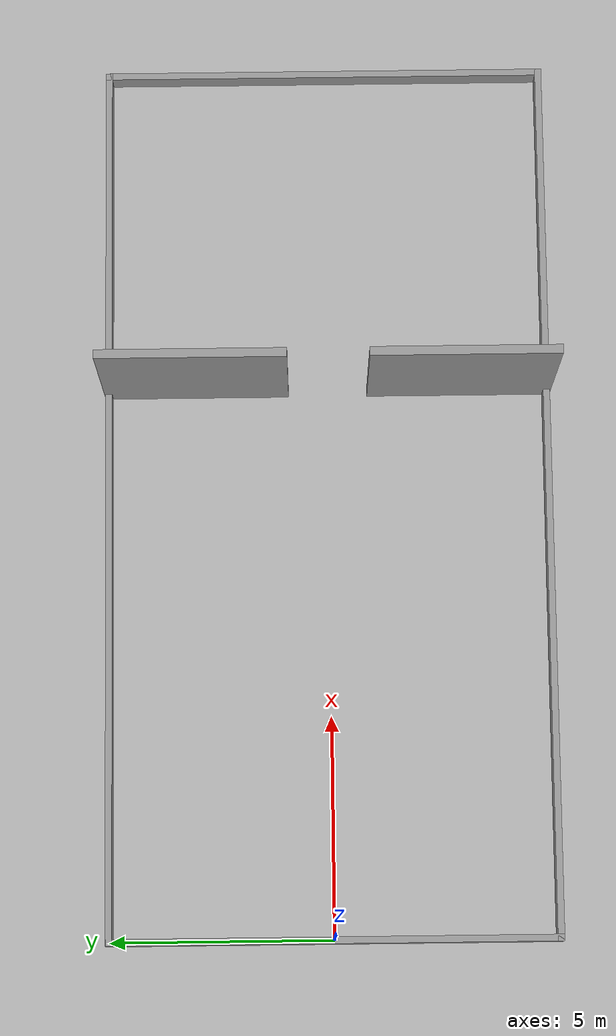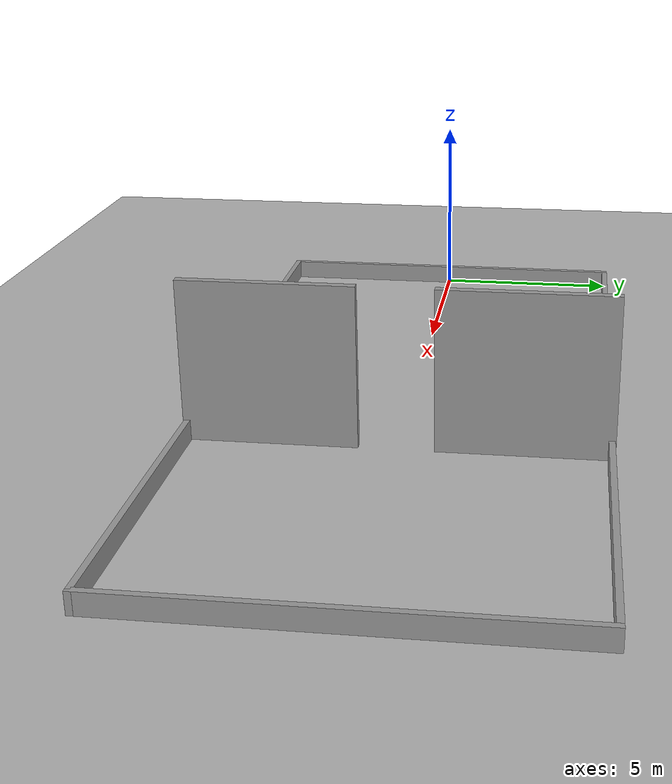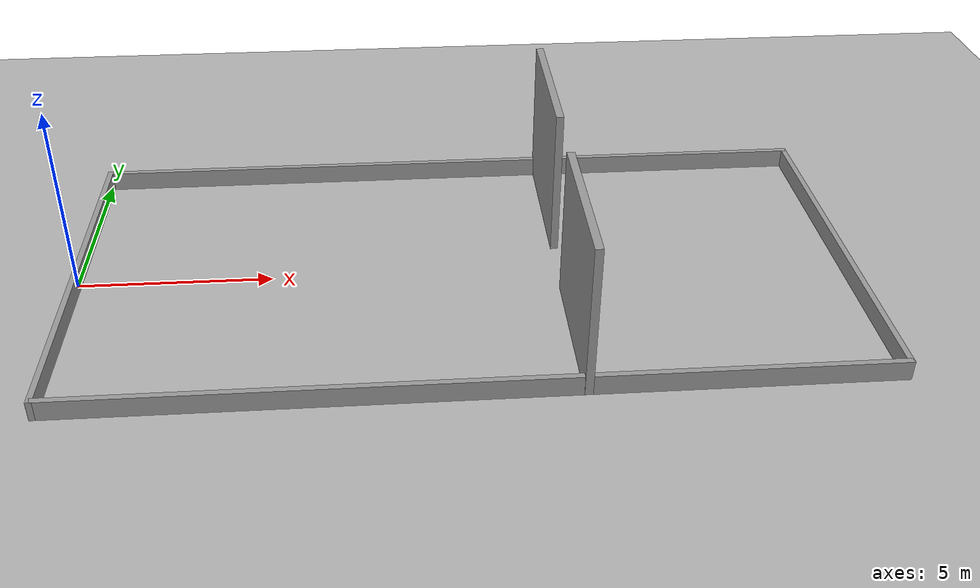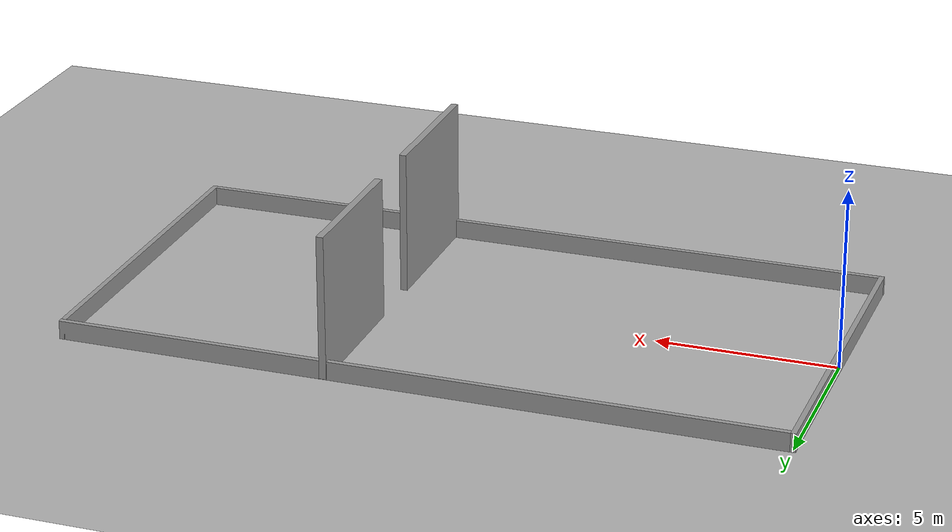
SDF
<sdf version="1.7">
 <world name="default">
  <light name="sun" type="directional">
   <pose>0 0 10 0 -0 0</pose>
   <diffuse>0.8 0.8 0.8 1</diffuse>
   <specular>0.2 0.2 0.2 1</specular>
   <attenuation>
    <range>1000</range>
    <constant>0.9</constant>
    <linear>0.01</linear>
    <quadratic>0.001</quadratic>
   </attenuation>
   <direction>-0.5 0.1 -0.9</direction>
   <spot><inner_angle>0</inner_angle><outer_angle>0</outer_angle><falloff>0</falloff></spot>
  </light>
  <model name="ground_plane">
   <static>1</static>
   <link name="link">
    <collision name="collision">
     <geometry><plane><normal>0 0 1</normal><size>100 100</size></plane></geometry>
     <surface>
      <contact><collide_bitmask>65535</collide_bitmask></contact>
      <friction><ode><mu>100</mu><mu2>50</mu2></ode></friction>
     </surface>
    </collision>
    <visual name="visual">
     <cast_shadows>0</cast_shadows>
     <geometry><plane><normal>0 0 1</normal><size>100 100</size></plane></geometry>
     <material>
      <ambient>0.7 0.7 0.7 1</ambient>
      <diffuse>0.7 0.7 0.7 1</diffuse>
      <specular>0.1 0.1 0.1 1</specular>
      <emissive>0 0 0 0</emissive>
     </material>
    </visual>
   </link>
  </model>
  <gravity>0 0 -9.8</gravity>
  <magnetic_field>6e-06 2.3e-05 -4.2e-05</magnetic_field>
  <atmosphere type="adiabatic"/>
  <physics type="ode">
   <max_step_size>0.001</max_step_size>
   <real_time_factor>1</real_time_factor>
   <real_time_update_rate>1000</real_time_update_rate>
  </physics>
  <scene><ambient>0.4 0.4 0.4 1</ambient><background>1 1 1 1</background><shadows>0</shadows></scene>
  <spherical_coordinates>
   <surface_model>EARTH_WGS84</surface_model>
   <latitude_deg>0</latitude_deg>
   <longitude_deg>0</longitude_deg>
   <elevation>0</elevation>
   <heading_deg>0</heading_deg>
  </spherical_coordinates>
  <model name="Environment1">
   <pose>10 0 0 0 -0 0</pose>
   <link name="Wall_1">
    <collision name="Wall_1_Collision">
     <geometry><box><size>10.15 0.15 4</size></box></geometry>
     <pose>0 0 2 0 -0 0</pose>
    </collision>
    <visual name="Wall_1_Visual">
     <geometry><box><size>10.15 0.15 1</size></box></geometry>
     <material>
      <script><uri>file://media/materials/scripts/gazebo.material</uri><name>Gazebo/Grey</name></script>
      <ambient>1 1 1 1</ambient>
     </material>
     <meta><layer>0</layer></meta>
    </visual>
    <pose>-10 0 0 0 -0 1.5708</pose>
   </link>
   <link name="Wall_2">
    <collision name="Wall_2_Collision">
     <geometry><box><size>20.15 0.15 4</size></box></geometry>
     <pose>0 0 2 0 -0 0</pose>
    </collision>
    <visual name="Wall_2_Visual">
     <geometry><box><size>20.15 0.15 1</size></box></geometry>
     <material>
      <script><uri>file://media/materials/scripts/gazebo.material</uri><name>Gazebo/Grey</name></script>
      <ambient>1 1 1 1</ambient>
     </material>
     <meta><layer>0</layer></meta>
    </visual>
    <pose>-0 5 0 0 -0 0</pose>
   </link>
   <link name="Wall_3">
    <collision name="Wall_3_Collision">
     <geometry><box><size>10.15 0.15 4</size></box></geometry>
     <pose>0 0 2 0 -0 0</pose>
    </collision>
    <visual name="Wall_3_Visual">
     <geometry><box><size>10.15 0.15 1</size></box></geometry>
     <material>
      <script><uri>file://media/materials/scripts/gazebo.material</uri><name>Gazebo/Grey</name></script>
      <ambient>1 1 1 1</ambient>
     </material>
     <meta><layer>0</layer></meta>
    </visual>
    <pose>10 0 0 0 -0 -1.5708</pose>
   </link>
   <link name="Wall_5">
    <collision name="Wall_5_Collision">
     <geometry><box><size>20.15 0.15 4</size></box></geometry>
     <pose>0 0 2 0 -0 0</pose>
    </collision>
    <visual name="Wall_5_Visual">
     <geometry><box><size>20.15 0.15 1</size></box></geometry>
     <material>
      <script><uri>file://media/materials/scripts/gazebo.material</uri><name>Gazebo/Grey</name></script>
      <ambient>1 1 1 1</ambient>
     </material>
     <meta><layer>0</layer></meta>
    </visual>
    <pose>-0 -5 0 0 -0 3.14159</pose>
   </link>
   <link name="Wall_7">
    <collision name="Wall_7_Collision">
     <geometry><box><size>4.2 0.2 4</size></box></geometry>
     <pose>0 0 2 0 -0 0</pose>
    </collision>
    <visual name="Wall_7_Visual">
     <pose>0 0 2 0 -0 0</pose>
     <geometry><box><size>4.2 0.2 4</size></box></geometry>
     <material>
      <script><uri>file://media/materials/scripts/gazebo.material</uri><name>Gazebo/Grey</name></script>
      <ambient>1 1 1 1</ambient>
     </material>
     <meta><layer>0</layer></meta>
    </visual>
    <pose>2.5 3 0 0 -0 -1.5708</pose>
   </link>
   <link name="Wall_9">
    <collision name="Wall_9_Collision">
     <geometry><box><size>4.2 0.2 4</size></box></geometry>
     <pose>0 0 2 0 -0 0</pose>
    </collision>
    <visual name="Wall_9_Visual">
     <pose>0 0 2 0 -0 0</pose>
     <geometry><box><size>4.2 0.2 4</size></box></geometry>
     <material>
      <script><uri>file://media/materials/scripts/gazebo.material</uri><name>Gazebo/Grey</name></script>
      <ambient>1 1 1 1</ambient>
     </material>
     <meta><layer>0</layer></meta>
    </visual>
    <pose>2.5 -3 0 0 -0 -1.5708</pose>
   </link>
   <static>1</static>
  </model>
 </world>
</sdf>
